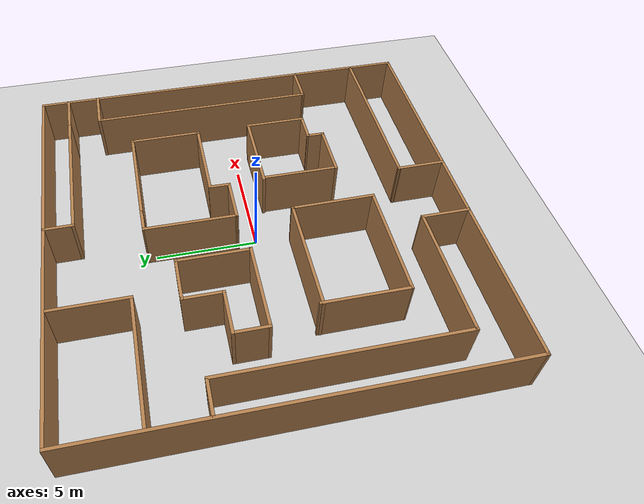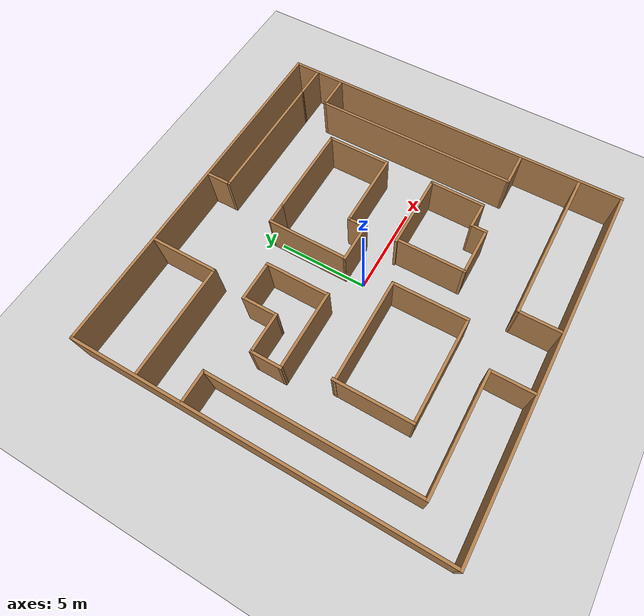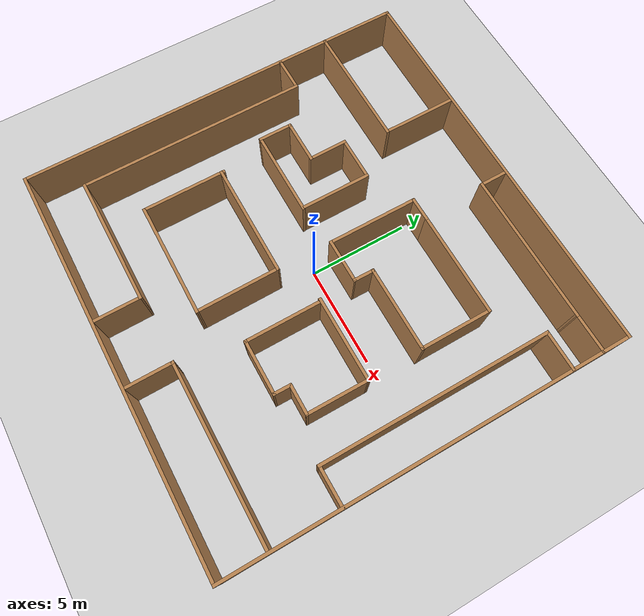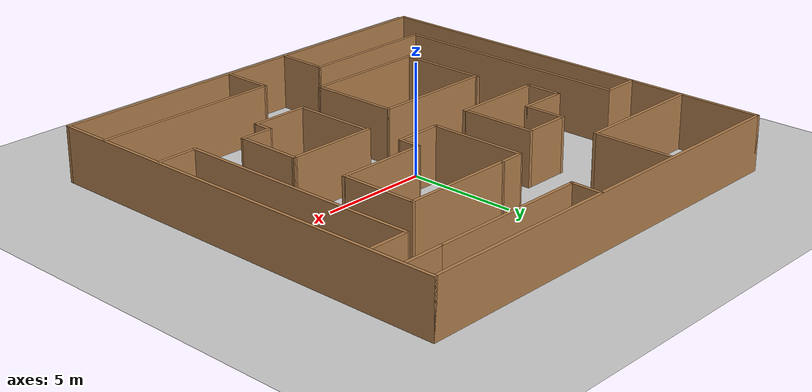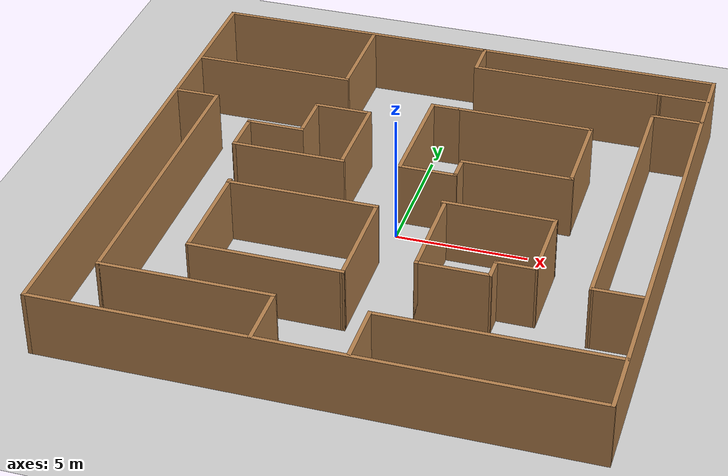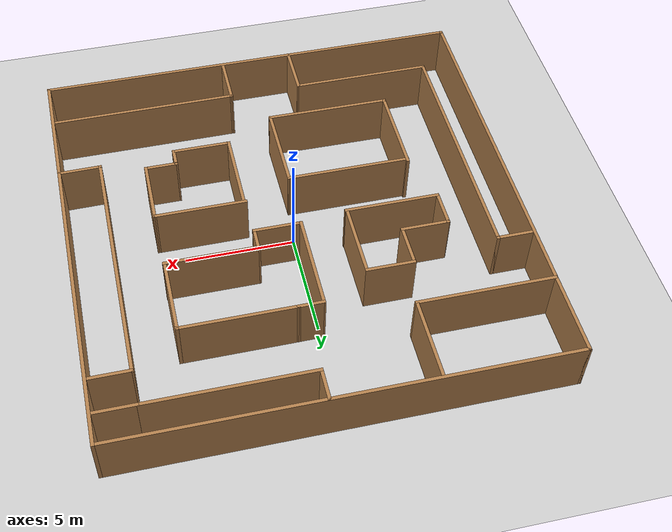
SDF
<sdf version="1.6">
 <world name="default">
  <light name="sun" type="directional">
   <pose>0 0 10 0 -0 0</pose>
   <diffuse>0.8 0.8 0.8 1</diffuse>
   <specular>0.2 0.2 0.2 1</specular>
   <attenuation>
    <range>1000</range>
    <constant>0.9</constant>
    <linear>0.01</linear>
    <quadratic>0.001</quadratic>
   </attenuation>
   <direction>-0.5 0.1 -0.9</direction>
  </light>
  <model name="ground_plane">
   <static>1</static>
   <link name="link">
    <collision name="collision">
     <geometry><plane><normal>0 0 1</normal><size>100 100</size></plane></geometry>
     <surface>
      <contact><collide_bitmask>65535</collide_bitmask></contact>
      <friction><ode><mu>100</mu><mu2>50</mu2></ode></friction>
     </surface>
    </collision>
    <visual name="visual">
     <cast_shadows>0</cast_shadows>
     <geometry><plane><normal>0 0 1</normal><size>100 100</size></plane></geometry>
     <material>
      <script><uri>file://media/materials/scripts/gazebo.material</uri><name>Gazebo/Grey</name></script>
     </material>
    </visual>
   </link>
  </model>
  <gravity>0 0 -9.8</gravity>
  <magnetic_field>6e-06 2.3e-05 -4.2e-05</magnetic_field>
  <atmosphere type="adiabatic"/>
  <physics name="default_physics" default="0" type="ode">
   <max_step_size>0.001</max_step_size>
   <real_time_factor>1</real_time_factor>
   <real_time_update_rate>1000</real_time_update_rate>
  </physics>
  <scene><ambient>0.4 0.4 0.4 1</ambient><background>0.7 0.7 0.7 1</background><shadows>1</shadows></scene>
  <audio><device>default</device></audio>
  <spherical_coordinates>
   <surface_model>EARTH_WGS84</surface_model>
   <latitude_deg>0</latitude_deg>
   <longitude_deg>0</longitude_deg>
   <elevation>0</elevation>
   <heading_deg>0</heading_deg>
  </spherical_coordinates>
  <model name="surroundings">
   <link name="Wall_0">
    <collision name="Wall_0_Collision">
     <geometry><box><size>20.15 0.15 2.5</size></box></geometry>
     <pose>0 0 1.25 0 -0 0</pose>
    </collision>
    <visual name="Wall_0_Visual">
     <pose>0 0 1.25 0 -0 0</pose>
     <geometry><box><size>20.15 0.15 2.5</size></box></geometry>
     <material>
      <script><uri>file://media/materials/scripts/gazebo.material</uri><name>Gazebo/Wood</name></script>
      <ambient>1 1 1 1</ambient>
     </material>
     <meta><layer>0</layer></meta>
    </visual>
    <pose>10 0 0 0 -0 -1.5708</pose>
   </link>
   <link name="Wall_1">
    <collision name="Wall_1_Collision">
     <geometry><box><size>20.15 0.15 2.5</size></box></geometry>
     <pose>0 0 1.25 0 -0 0</pose>
    </collision>
    <visual name="Wall_1_Visual">
     <pose>0 0 1.25 0 -0 0</pose>
     <geometry><box><size>20.15 0.15 2.5</size></box></geometry>
     <material>
      <script><uri>file://media/materials/scripts/gazebo.material</uri><name>Gazebo/Wood</name></script>
      <ambient>1 1 1 1</ambient>
     </material>
     <meta><layer>0</layer></meta>
    </visual>
    <pose>0 -10 0 0 -0 3.14159</pose>
   </link>
   <link name="Wall_2">
    <collision name="Wall_2_Collision">
     <geometry><box><size>20.15 0.15 2.5</size></box></geometry>
     <pose>0 0 1.25 0 -0 0</pose>
    </collision>
    <visual name="Wall_2_Visual">
     <pose>0 0 1.25 0 -0 0</pose>
     <geometry><box><size>20.15 0.15 2.5</size></box></geometry>
     <material>
      <script><uri>file://media/materials/scripts/gazebo.material</uri><name>Gazebo/Wood</name></script>
      <ambient>1 1 1 1</ambient>
     </material>
     <meta><layer>0</layer></meta>
    </visual>
    <pose>-10 0 0 0 -0 1.5708</pose>
   </link>
   <link name="Wall_3">
    <collision name="Wall_3_Collision">
     <geometry><box><size>20.15 0.15 2.5</size></box></geometry>
     <pose>0 0 1.25 0 -0 0</pose>
    </collision>
    <visual name="Wall_3_Visual">
     <pose>0 0 1.25 0 -0 0</pose>
     <geometry><box><size>20.15 0.15 2.5</size></box></geometry>
     <material>
      <script><uri>file://media/materials/scripts/gazebo.material</uri><name>Gazebo/Wood</name></script>
      <ambient>1 1 1 1</ambient>
     </material>
     <meta><layer>0</layer></meta>
    </visual>
    <pose>0 10 0 0 -0 0</pose>
   </link>
   <static>1</static>
  </model>
  <model name="model3">
   <link name="Wall_10">
    <collision name="Wall_10_Collision">
     <geometry><box><size>11.5 0.15 2.5</size></box></geometry>
     <pose>0 0 1.25 0 -0 0</pose>
    </collision>
    <visual name="Wall_10_Visual">
     <pose>0 0 1.25 0 -0 0</pose>
     <geometry><box><size>11.5 0.15 2.5</size></box></geometry>
     <material>
      <script><uri>file://media/materials/scripts/gazebo.material</uri><name>Gazebo/Wood</name></script>
      <ambient>1 1 1 1</ambient>
     </material>
     <meta><layer>0</layer></meta>
    </visual>
    <pose>-8.3253 -2.0051 0 0 -0 -1.5708</pose>
   </link>
   <link name="Wall_11">
    <collision name="Wall_11_Collision">
     <geometry><box><size>6.5 0.15 2.5</size></box></geometry>
     <pose>0 0 1.25 0 -0 0</pose>
    </collision>
    <visual name="Wall_11_Visual">
     <pose>0 0 1.25 0 -0 0</pose>
     <geometry><box><size>6.5 0.15 2.5</size></box></geometry>
     <material>
      <script><uri>file://media/materials/scripts/gazebo.material</uri><name>Gazebo/Wood</name></script>
      <ambient>1 1 1 1</ambient>
     </material>
     <meta><layer>0</layer></meta>
    </visual>
    <pose>-5.1503 -7.6801 0 0 -0 0</pose>
   </link>
   <link name="Wall_12">
    <collision name="Wall_12_Collision">
     <geometry><box><size>2.45 0.15 2.5</size></box></geometry>
     <pose>0 0 1.25 0 -0 0</pose>
    </collision>
    <visual name="Wall_12_Visual">
     <pose>0 0 1.25 0 -0 0</pose>
     <geometry><box><size>2.45 0.15 2.5</size></box></geometry>
     <material>
      <script><uri>file://media/materials/scripts/gazebo.material</uri><name>Gazebo/Wood</name></script>
      <ambient>1 1 1 1</ambient>
     </material>
     <meta><layer>0</layer></meta>
    </visual>
    <pose>-1.97197 -8.8301 0 0 -0 -1.5679</pose>
   </link>
   <link name="Wall_14">
    <collision name="Wall_14_Collision">
     <geometry><box><size>2.45 0.15 2.5</size></box></geometry>
     <pose>0 0 1.25 0 -0 0</pose>
    </collision>
    <visual name="Wall_14_Visual">
     <pose>0 0 1.25 0 -0 0</pose>
     <geometry><box><size>2.45 0.15 2.5</size></box></geometry>
     <material>
      <script><uri>file://media/materials/scripts/gazebo.material</uri><name>Gazebo/Wood</name></script>
      <ambient>1 1 1 1</ambient>
     </material>
     <meta><layer>0</layer></meta>
    </visual>
    <pose>1.37803 -8.8301 0 0 -0 1.5737</pose>
   </link>
   <link name="Wall_15">
    <collision name="Wall_15_Collision">
     <geometry><box><size>8.74437 0.15 2.5</size></box></geometry>
     <pose>0 0 1.25 0 -0 0</pose>
    </collision>
    <visual name="Wall_15_Visual">
     <pose>0 0 1.25 0 -0 0</pose>
     <geometry><box><size>8.74437 0.15 2.5</size></box></geometry>
     <material>
      <script><uri>file://media/materials/scripts/gazebo.material</uri><name>Gazebo/Wood</name></script>
      <ambient>1 1 1 1</ambient>
     </material>
     <meta><layer>0</layer></meta>
    </visual>
    <pose>5.67188 -7.66991 0 0 -0 0.002373</pose>
   </link>
   <link name="Wall_17">
    <collision name="Wall_17_Collision">
     <geometry><box><size>1.99439 0.15 2.5</size></box></geometry>
     <pose>0 0 1.25 0 -0 0</pose>
    </collision>
    <visual name="Wall_17_Visual">
     <pose>0 0 1.25 0 -0 0</pose>
     <geometry><box><size>1.99439 0.15 2.5</size></box></geometry>
     <material>
      <script><uri>file://media/materials/scripts/gazebo.material</uri><name>Gazebo/Wood</name></script>
      <ambient>1 1 1 1</ambient>
     </material>
     <meta><layer>0</layer></meta>
    </visual>
    <pose>9.04688 -4.31991 0 0 -0 -3.13054</pose>
   </link>
   <link name="Wall_18">
    <collision name="Wall_18_Collision">
     <geometry><box><size>11.5 0.15 2.5</size></box></geometry>
     <pose>0 0 1.25 0 -0 0</pose>
    </collision>
    <visual name="Wall_18_Visual">
     <pose>0 0 1.25 0 -0 0</pose>
     <geometry><box><size>11.5 0.15 2.5</size></box></geometry>
     <material>
      <script><uri>file://media/materials/scripts/gazebo.material</uri><name>Gazebo/Wood</name></script>
      <ambient>1 1 1 1</ambient>
     </material>
     <meta><layer>0</layer></meta>
    </visual>
    <pose>8.1247 1.3449 0 0 -0 1.5708</pose>
   </link>
   <link name="Wall_19">
    <collision name="Wall_19_Collision">
     <geometry><box><size>1.99657 0.15 2.5</size></box></geometry>
     <pose>0 0 1.25 0 -0 0</pose>
    </collision>
    <visual name="Wall_19_Visual">
     <pose>0 0 1.25 0 -0 0</pose>
     <geometry><box><size>1.99657 0.15 2.5</size></box></geometry>
     <material>
      <script><uri>file://media/materials/scripts/gazebo.material</uri><name>Gazebo/Wood</name></script>
      <ambient>1 1 1 1</ambient>
     </material>
     <meta><layer>0</layer></meta>
    </visual>
    <pose>9.04777 7.0207 0 0 -0 0.000874</pose>
   </link>
   <link name="Wall_21">
    <collision name="Wall_21_Collision">
     <geometry><box><size>1.99657 0.15 2.5</size></box></geometry>
     <pose>0 0 1.25 0 -0 0</pose>
    </collision>
    <visual name="Wall_21_Visual">
     <pose>0 0 1.25 0 -0 0</pose>
     <geometry><box><size>1.99657 0.15 2.5</size></box></geometry>
     <material>
      <script><uri>file://media/materials/scripts/gazebo.material</uri><name>Gazebo/Wood</name></script>
      <ambient>1 1 1 1</ambient>
     </material>
     <meta><layer>0</layer></meta>
    </visual>
    <pose>9.04777 8.6207 0 0 -0 -3.14072</pose>
   </link>
   <link name="Wall_22">
    <collision name="Wall_22_Collision">
     <geometry><box><size>7.5 0.15 2.5</size></box></geometry>
     <pose>0 0 1.25 0 -0 0</pose>
    </collision>
    <visual name="Wall_22_Visual">
     <pose>0 0 1.25 0 -0 0</pose>
     <geometry><box><size>7.5 0.15 2.5</size></box></geometry>
     <material>
      <script><uri>file://media/materials/scripts/gazebo.material</uri><name>Gazebo/Wood</name></script>
      <ambient>1 1 1 1</ambient>
     </material>
     <meta><layer>0</layer></meta>
    </visual>
    <pose>4.44973 8.62011 0 0 -0 3.14154</pose>
   </link>
   <link name="Wall_24">
    <collision name="Wall_24_Collision">
     <geometry><box><size>1.51 0.15 2.5</size></box></geometry>
     <pose>0 0 1.25 0 -0 0</pose>
    </collision>
    <visual name="Wall_24_Visual">
     <pose>0 0 1.25 0 -0 0</pose>
     <geometry><box><size>1.51 0.15 2.5</size></box></geometry>
     <material>
      <script><uri>file://media/materials/scripts/gazebo.material</uri><name>Gazebo/Wood</name></script>
      <ambient>1 1 1 1</ambient>
     </material>
     <meta><layer>0</layer></meta>
    </visual>
    <pose>0.774762 9.30031 0 0 -0 1.5708</pose>
   </link>
   <link name="Wall_26">
    <collision name="Wall_26_Collision">
     <geometry><box><size>5.25 0.15 2.5</size></box></geometry>
     <pose>0 0 1.25 0 -0 0</pose>
    </collision>
    <visual name="Wall_26_Visual">
     <pose>0 0 1.25 0 -0 0</pose>
     <geometry><box><size>5.25 0.15 2.5</size></box></geometry>
     <material>
      <script><uri>file://media/materials/scripts/gazebo.material</uri><name>Gazebo/Wood</name></script>
      <ambient>0.921569 0.807843 0.615686 1</ambient>
     </material>
     <meta><layer>0</layer></meta>
    </visual>
    <pose>3.51982 5.3955 0 0 -0 0</pose>
   </link>
   <link name="Wall_27">
    <collision name="Wall_27_Collision">
     <geometry><box><size>3.61957 0.15 2.5</size></box></geometry>
     <pose>0 0 1.25 0 -0 0</pose>
    </collision>
    <visual name="Wall_27_Visual">
     <pose>0 0 1.25 0 -0 0</pose>
     <geometry><box><size>3.61957 0.15 2.5</size></box></geometry>
     <material>
      <script><uri>file://media/materials/scripts/gazebo.material</uri><name>Gazebo/Wood</name></script>
      <ambient>0.760784 0.662745 0.627451 1</ambient>
     </material>
     <meta><layer>0</layer></meta>
    </visual>
    <pose>6.06982 3.66072 0 0 -0 -1.5708</pose>
   </link>
   <link name="Wall_28">
    <collision name="Wall_28_Collision">
     <geometry><box><size>4.25 0.15 2.5</size></box></geometry>
     <pose>0 0 1.25 0 -0 0</pose>
    </collision>
    <visual name="Wall_28_Visual">
     <pose>0 0 1.25 0 -0 0</pose>
     <geometry><box><size>4.25 0.15 2.5</size></box></geometry>
     <material>
      <script><uri>file://media/materials/scripts/gazebo.material</uri><name>Gazebo/Wood</name></script>
      <ambient>0.760784 0.662745 0.627451 1</ambient>
     </material>
     <meta><layer>0</layer></meta>
    </visual>
    <pose>4.03495 1.92593 0 0 -0 3.14159</pose>
   </link>
   <link name="Wall_29">
    <collision name="Wall_29_Collision">
     <geometry><box><size>1.10064 0.15 2.5</size></box></geometry>
     <pose>0 0 1.25 0 -0 0</pose>
    </collision>
    <visual name="Wall_29_Visual">
     <pose>0 0 1.25 0 -0 0</pose>
     <geometry><box><size>1.10064 0.15 2.5</size></box></geometry>
     <material>
      <script><uri>file://media/materials/scripts/gazebo.material</uri><name>Gazebo/Wood</name></script>
      <ambient>0.760784 0.662745 0.627451 1</ambient>
     </material>
     <meta><layer>0</layer></meta>
    </visual>
    <pose>1.96636 1.45063 0 0 -0 -1.57807</pose>
   </link>
   <link name="Wall_30">
    <collision name="Wall_30_Collision">
     <geometry><box><size>2.25 0.15 2.5</size></box></geometry>
     <pose>0 0 1.25 0 -0 0</pose>
    </collision>
    <visual name="Wall_30_Visual">
     <pose>0 0 1.25 0 -0 0</pose>
     <geometry><box><size>2.25 0.15 2.5</size></box></geometry>
     <material>
      <script><uri>file://media/materials/scripts/gazebo.material</uri><name>Gazebo/Wood</name></script>
      <ambient>0.760784 0.662745 0.627451 1</ambient>
     </material>
     <meta><layer>0</layer></meta>
    </visual>
    <pose>0.912905 0.970914 0 0 -0 3.14159</pose>
   </link>
   <link name="Wall_32">
    <collision name="Wall_32_Collision">
     <geometry><box><size>3.11281 0.15 2.5</size></box></geometry>
     <pose>0 0 1.25 0 -0 0</pose>
    </collision>
    <visual name="Wall_32_Visual">
     <pose>0 0 1.25 0 -0 0</pose>
     <geometry><box><size>3.11281 0.15 2.5</size></box></geometry>
     <material>
      <script><uri>file://media/materials/scripts/gazebo.material</uri><name>Gazebo/Wood</name></script>
      <ambient>1 1 1 1</ambient>
     </material>
     <meta><layer>0</layer></meta>
    </visual>
    <pose>6.09392 -2.28502 0 0 -0 -1.57652</pose>
   </link>
   <link name="Wall_33">
    <collision name="Wall_33_Collision">
     <geometry><box><size>1.54668 0.15 2.5</size></box></geometry>
     <pose>0 0 1.25 0 -0 0</pose>
    </collision>
    <visual name="Wall_33_Visual">
     <pose>0 0 1.25 0 -0 0</pose>
     <geometry><box><size>1.54668 0.15 2.5</size></box></geometry>
     <material>
      <script><uri>file://media/materials/scripts/gazebo.material</uri><name>Gazebo/Wood</name></script>
      <ambient>1 1 1 1</ambient>
     </material>
     <meta><layer>0</layer></meta>
    </visual>
    <pose>5.38726 -3.7664 0 0 -0 3.14159</pose>
   </link>
   <link name="Wall_34">
    <collision name="Wall_34_Collision">
     <geometry><box><size>0.940039 0.15 2.5</size></box></geometry>
     <pose>0 0 1.25 0 -0 0</pose>
    </collision>
    <visual name="Wall_34_Visual">
     <pose>0 0 1.25 0 -0 0</pose>
     <geometry><box><size>0.940039 0.15 2.5</size></box></geometry>
     <material>
      <script><uri>file://media/materials/scripts/gazebo.material</uri><name>Gazebo/Wood</name></script>
      <ambient>1 1 1 1</ambient>
     </material>
     <meta><layer>0</layer></meta>
    </visual>
    <pose>4.68447 -4.16139 0 0 -0 -1.58244</pose>
   </link>
   <link name="Wall_35">
    <collision name="Wall_35_Collision">
     <geometry><box><size>2.75 0.15 2.5</size></box></geometry>
     <pose>0 0 1.25 0 -0 0</pose>
    </collision>
    <visual name="Wall_35_Visual">
     <pose>0 0 1.25 0 -0 0</pose>
     <geometry><box><size>2.75 0.15 2.5</size></box></geometry>
     <material>
      <script><uri>file://media/materials/scripts/gazebo.material</uri><name>Gazebo/Wood</name></script>
      <ambient>1 1 1 1</ambient>
     </material>
     <meta><layer>0</layer></meta>
    </visual>
    <pose>3.37987 -4.55638 0 0 -0 3.14159</pose>
   </link>
   <link name="Wall_38">
    <collision name="Wall_38_Collision">
     <geometry><box><size>4.25 0.15 2.5</size></box></geometry>
     <pose>0 0 1.25 0 -0 0</pose>
    </collision>
    <visual name="Wall_38_Visual">
     <pose>0 0 1.25 0 -0 0</pose>
     <geometry><box><size>4.25 0.15 2.5</size></box></geometry>
     <material>
      <script><uri>file://media/materials/scripts/gazebo.material</uri><name>Gazebo/Wood</name></script>
      <ambient>1 1 1 1</ambient>
     </material>
     <meta><layer>0</layer></meta>
    </visual>
    <pose>4.05241 -0.803637 0 0 -0 3.14159</pose>
   </link>
   <link name="Wall_40">
    <collision name="Wall_40_Collision">
     <geometry><box><size>3.75 0.15 2.5</size></box></geometry>
     <pose>0 0 1.25 0 -0 0</pose>
    </collision>
    <visual name="Wall_40_Visual">
     <pose>0 0 1.25 0 -0 0</pose>
     <geometry><box><size>3.75 0.15 2.5</size></box></geometry>
     <material>
      <script><uri>file://media/materials/scripts/gazebo.material</uri><name>Gazebo/Wood</name></script>
      <ambient>1 1 1 1</ambient>
     </material>
     <meta><layer>0</layer></meta>
    </visual>
    <pose>2.07987 -2.75638 0 0 -0 1.5708</pose>
   </link>
   <link name="Wall_48">
    <collision name="Wall_48_Collision">
     <geometry><box><size>4.5605 0.15 2.5</size></box></geometry>
     <pose>0 0 1.25 0 -0 0</pose>
    </collision>
    <visual name="Wall_48_Visual">
     <pose>0 0 1.25 0 -0 0</pose>
     <geometry><box><size>4.5605 0.15 2.5</size></box></geometry>
     <material>
      <script><uri>file://media/materials/scripts/gazebo.material</uri><name>Gazebo/Wood</name></script>
      <ambient>0.921569 0.807843 0.615686 1</ambient>
     </material>
     <meta><layer>0</layer></meta>
    </visual>
    <pose>-0.126075 3.18054 0 0 -0 1.5658</pose>
   </link>
   <link name="Wall_49">
    <collision name="Wall_49_Collision">
     <geometry><box><size>1.23492 0.15 2.5</size></box></geometry>
     <pose>0 0 1.25 0 -0 0</pose>
    </collision>
    <visual name="Wall_49_Visual">
     <pose>0 0 1.25 0 -0 0</pose>
     <geometry><box><size>1.23492 0.15 2.5</size></box></geometry>
     <material>
      <script><uri>file://media/materials/scripts/gazebo.material</uri><name>Gazebo/Wood</name></script>
      <ambient>1 1 1 1</ambient>
     </material>
     <meta><layer>0</layer></meta>
    </visual>
    <pose>0.427385 5.39063 0 0 -0 0.008973</pose>
   </link>
   <link name="Wall_51">
    <collision name="Wall_51_Collision">
     <geometry><box><size>4.37402 0.15 2.5</size></box></geometry>
     <pose>0 0 1.25 0 -0 0</pose>
    </collision>
    <visual name="Wall_51_Visual">
     <pose>0 0 1.25 0 -0 0</pose>
     <geometry><box><size>4.37402 0.15 2.5</size></box></geometry>
     <material>
      <script><uri>file://media/materials/scripts/gazebo.material</uri><name>Gazebo/Wood</name></script>
      <ambient>1 1 1 1</ambient>
     </material>
     <meta><layer>0</layer></meta>
    </visual>
    <pose>-4.37524 0.704316 0 0 -0 3.14159</pose>
   </link>
   <link name="Wall_52">
    <collision name="Wall_52_Collision">
     <geometry><box><size>1.74993 0.15 2.5</size></box></geometry>
     <pose>0 0 1.25 0 -0 0</pose>
    </collision>
    <visual name="Wall_52_Visual">
     <pose>0 0 1.25 0 -0 0</pose>
     <geometry><box><size>1.74993 0.15 2.5</size></box></geometry>
     <material>
      <script><uri>file://media/materials/scripts/gazebo.material</uri><name>Gazebo/Wood</name></script>
      <ambient>1 1 1 1</ambient>
     </material>
     <meta><layer>0</layer></meta>
    </visual>
    <pose>-6.48716 1.50428 0 0 -0 1.5707</pose>
   </link>
   <link name="Wall_53">
    <collision name="Wall_53_Collision">
     <geometry><box><size>2.25 0.15 2.5</size></box></geometry>
     <pose>0 0 1.25 0 -0 0</pose>
    </collision>
    <visual name="Wall_53_Visual">
     <pose>0 0 1.25 0 -0 0</pose>
     <geometry><box><size>2.25 0.15 2.5</size></box></geometry>
     <material>
      <script><uri>file://media/materials/scripts/gazebo.material</uri><name>Gazebo/Wood</name></script>
      <ambient>1 1 1 1</ambient>
     </material>
     <meta><layer>0</layer></meta>
    </visual>
    <pose>-5.43709 2.30425 0 0 -0 0</pose>
   </link>
   <link name="Wall_54">
    <collision name="Wall_54_Collision">
     <geometry><box><size>2 0.15 2.5</size></box></geometry>
     <pose>0 0 1.25 0 -0 0</pose>
    </collision>
    <visual name="Wall_54_Visual">
     <pose>0 0 1.25 0 -0 0</pose>
     <geometry><box><size>2 0.15 2.5</size></box></geometry>
     <material>
      <script><uri>file://media/materials/scripts/gazebo.material</uri><name>Gazebo/Wood</name></script>
      <ambient>1 1 1 1</ambient>
     </material>
     <meta><layer>0</layer></meta>
    </visual>
    <pose>-4.38709 3.22925 0 0 -0 1.5708</pose>
   </link>
   <link name="Wall_55">
    <collision name="Wall_55_Collision">
     <geometry><box><size>2.25 0.15 2.5</size></box></geometry>
     <pose>0 0 1.25 0 -0 0</pose>
    </collision>
    <visual name="Wall_55_Visual">
     <pose>0 0 1.25 0 -0 0</pose>
     <geometry><box><size>2.25 0.15 2.5</size></box></geometry>
     <material>
      <script><uri>file://media/materials/scripts/gazebo.material</uri><name>Gazebo/Wood</name></script>
      <ambient>1 1 1 1</ambient>
     </material>
     <meta><layer>0</layer></meta>
    </visual>
    <pose>-3.33709 4.15425 0 0 -0 0</pose>
   </link>
   <link name="Wall_56">
    <collision name="Wall_56_Collision">
     <geometry><box><size>3.5 0.15 2.5</size></box></geometry>
     <pose>0 0 1.25 0 -0 0</pose>
    </collision>
    <visual name="Wall_56_Visual">
     <pose>0 0 1.25 0 -0 0</pose>
     <geometry><box><size>3.5 0.15 2.5</size></box></geometry>
     <material>
      <script><uri>file://media/materials/scripts/gazebo.material</uri><name>Gazebo/Wood</name></script>
      <ambient>1 1 1 1</ambient>
     </material>
     <meta><layer>0</layer></meta>
    </visual>
    <pose>-2.28709 2.47925 0 0 -0 -1.5708</pose>
   </link>
   <link name="Wall_58">
    <collision name="Wall_58_Collision">
     <geometry><box><size>4.25 0.15 2.5</size></box></geometry>
     <pose>0 0 1.25 0 -0 0</pose>
    </collision>
    <visual name="Wall_58_Visual">
     <pose>0 0 1.25 0 -0 0</pose>
     <geometry><box><size>4.25 0.15 2.5</size></box></geometry>
     <material>
      <script><uri>file://media/materials/scripts/gazebo.material</uri><name>Gazebo/Wood</name></script>
      <ambient>1 1 1 1</ambient>
     </material>
     <meta><layer>0</layer></meta>
    </visual>
    <pose>-5.78794 -3.70872 0 0 -0 -1.5708</pose>
   </link>
   <link name="Wall_59">
    <collision name="Wall_59_Collision">
     <geometry><box><size>5.76713 0.15 2.5</size></box></geometry>
     <pose>0 0 1.25 0 -0 0</pose>
    </collision>
    <visual name="Wall_59_Visual">
     <pose>0 0 1.25 0 -0 0</pose>
     <geometry><box><size>5.76713 0.15 2.5</size></box></geometry>
     <material>
      <script><uri>file://media/materials/scripts/gazebo.material</uri><name>Gazebo/Wood</name></script>
      <ambient>1 1 1 1</ambient>
     </material>
     <meta><layer>0</layer></meta>
    </visual>
    <pose>-2.97938 -5.77414 0 0 -0 -0.00549</pose>
   </link>
   <link name="Wall_6">
    <collision name="Wall_6_Collision">
     <geometry><box><size>3.75 0.15 2.5</size></box></geometry>
     <pose>0 0 1.25 0 -0 0</pose>
    </collision>
    <visual name="Wall_6_Visual">
     <pose>0 0 1.25 0 -0 0</pose>
     <geometry><box><size>3.75 0.15 2.5</size></box></geometry>
     <material>
      <script><uri>file://media/materials/scripts/gazebo.material</uri><name>Gazebo/Wood</name></script>
      <ambient>1 1 1 1</ambient>
     </material>
     <meta><layer>0</layer></meta>
    </visual>
    <pose>-3.87112 8.06488 0 0 -0 -1.5708</pose>
   </link>
   <link name="Wall_60">
    <collision name="Wall_60_Collision">
     <geometry><box><size>4.18185 0.15 2.5</size></box></geometry>
     <pose>0 0 1.25 0 -0 0</pose>
    </collision>
    <visual name="Wall_60_Visual">
     <pose>0 0 1.25 0 -0 0</pose>
     <geometry><box><size>4.18185 0.15 2.5</size></box></geometry>
     <material>
      <script><uri>file://media/materials/scripts/gazebo.material</uri><name>Gazebo/Wood</name></script>
      <ambient>1 1 1 1</ambient>
     </material>
     <meta><layer>0</layer></meta>
    </visual>
    <pose>-0.184831 -3.77369 0 0 -0 1.57774</pose>
   </link>
   <link name="Wall_61">
    <collision name="Wall_61_Collision">
     <geometry><box><size>5.75 0.15 2.5</size></box></geometry>
     <pose>0 0 1.25 0 -0 0</pose>
    </collision>
    <visual name="Wall_61_Visual">
     <pose>0 0 1.25 0 -0 0</pose>
     <geometry><box><size>5.75 0.15 2.5</size></box></geometry>
     <material>
      <script><uri>file://media/materials/scripts/gazebo.material</uri><name>Gazebo/Wood</name></script>
      <ambient>1 1 1 1</ambient>
     </material>
     <meta><layer>0</layer></meta>
    </visual>
    <pose>-2.99883 -1.75781 0 0 -0 3.14159</pose>
   </link>
   <link name="Wall_7">
    <collision name="Wall_7_Collision">
     <geometry><box><size>6.25 0.15 2.5</size></box></geometry>
     <pose>0 0 1.25 0 -0 0</pose>
    </collision>
    <visual name="Wall_7_Visual">
     <pose>0 0 1.25 0 -0 0</pose>
     <geometry><box><size>6.25 0.15 2.5</size></box></geometry>
     <material>
      <script><uri>file://media/materials/scripts/gazebo.material</uri><name>Gazebo/Wood</name></script>
      <ambient>1 1 1 1</ambient>
     </material>
     <meta><layer>0</layer></meta>
    </visual>
    <pose>-6.92112 6.26488 0 0 -0 3.14159</pose>
   </link>
   <link name="Wall_9">
    <collision name="Wall_9_Collision">
     <geometry><box><size>1.75 0.15 2.5</size></box></geometry>
     <pose>0 0 1.25 0 -0 0</pose>
    </collision>
    <visual name="Wall_9_Visual">
     <pose>0 0 1.25 0 -0 0</pose>
     <geometry><box><size>1.75 0.15 2.5</size></box></geometry>
     <material>
      <script><uri>file://media/materials/scripts/gazebo.material</uri><name>Gazebo/Wood</name></script>
      <ambient>1 1 1 1</ambient>
     </material>
     <meta><layer>0</layer></meta>
    </visual>
    <pose>-9.1253 3.6699 0 0 -0 0</pose>
   </link>
   <static>1</static>
  </model>
  <plugin filename="libcollision_map_creator.so" name="collision_map_creator"/>
 </world>
</sdf>
